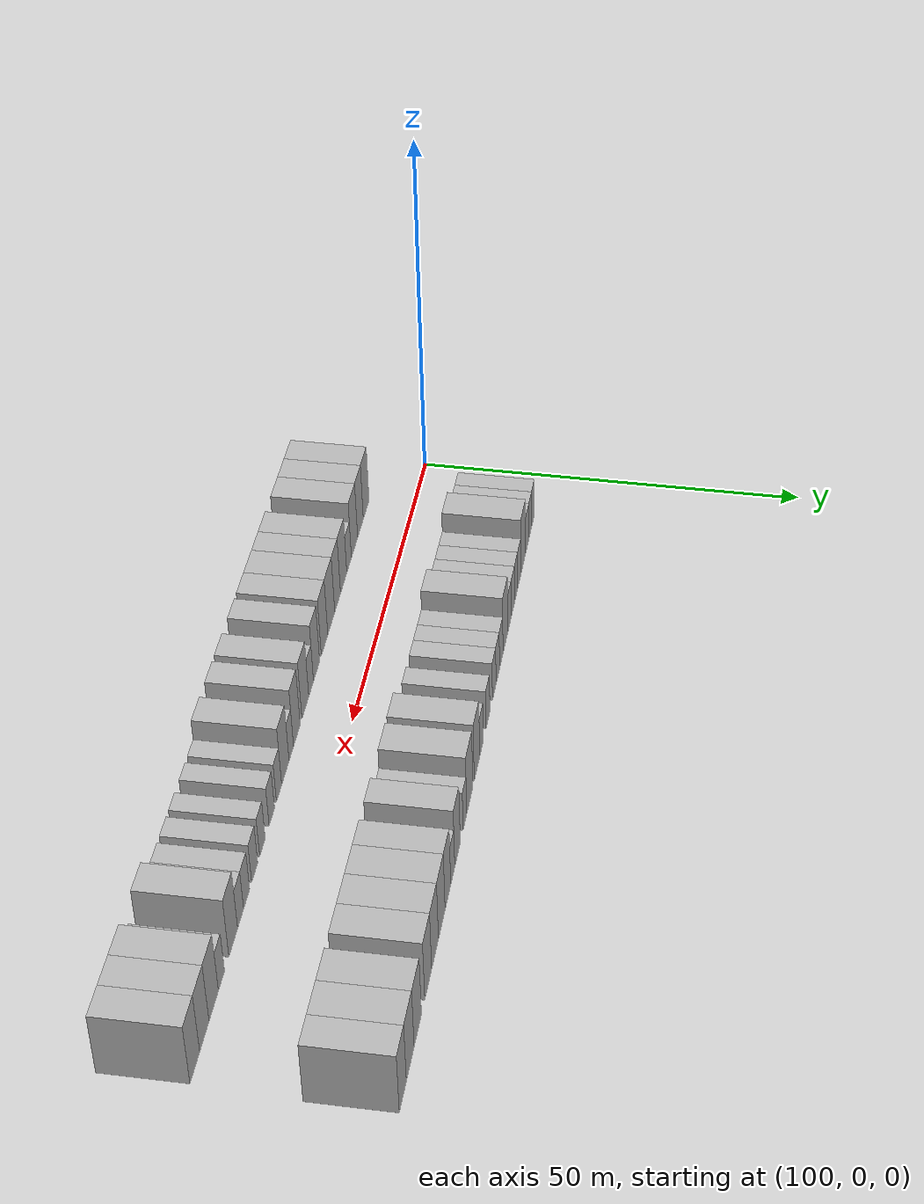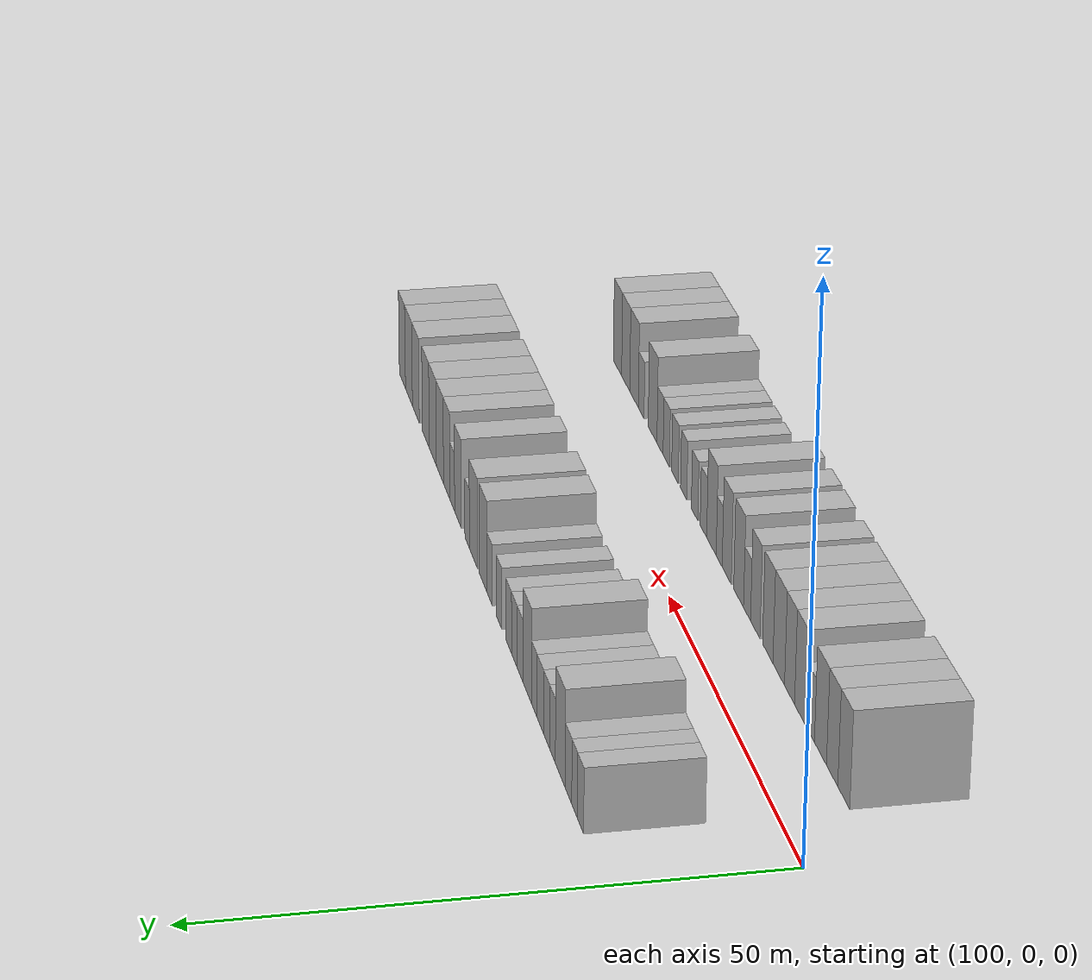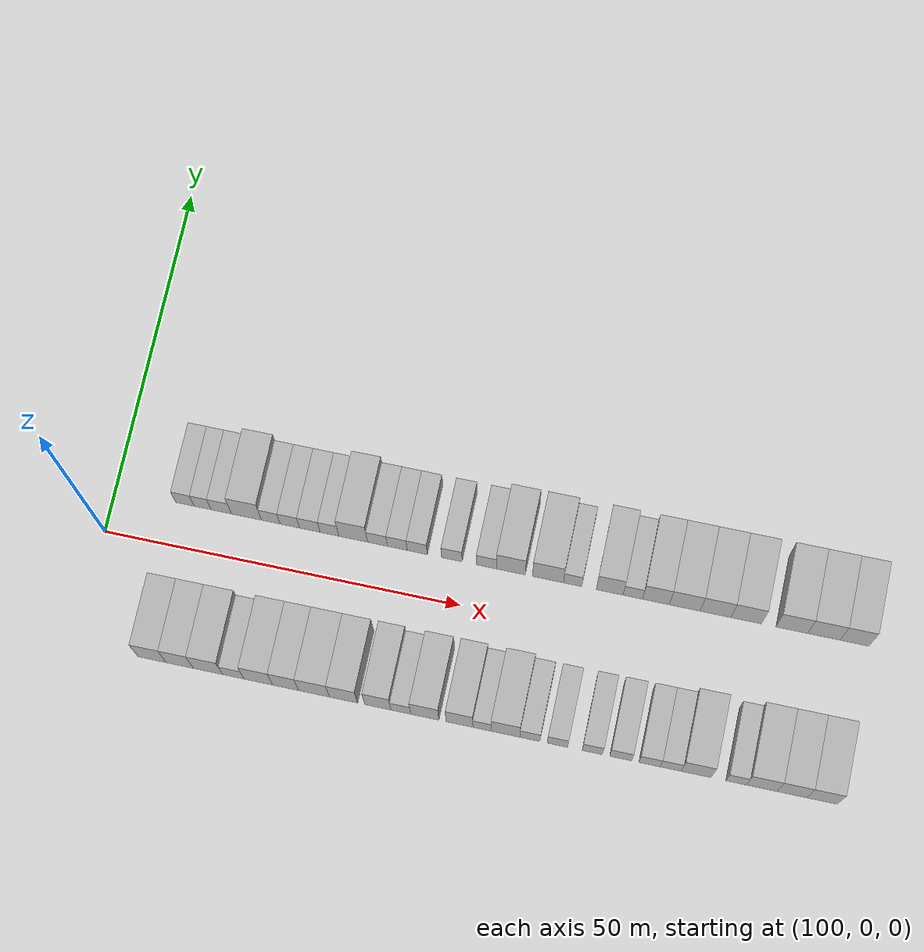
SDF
<sdf version="1.6">
 <world name="default">
  <model name="building_27">
   <static>1</static>
   <pose>109.8385 11.0000 0 0.000000 0.000000 1.570796</pose>
   <link name="link">
    <pose>0 0 3.00 0 0 0</pose>
    <collision name="collision"><geometry><box><size>10.0000 2.6257 6.0000</size></box></geometry></collision>
    <visual name="visual">
     <cast_shadows>0</cast_shadows>
     <geometry><box><size>10.0000 2.6257 6.0000</size></box></geometry>
     <material>
      <script>
       <uri>model://HANNAS_wall/materials/scripts</uri>
       <uri>model://HANNAS_wall/materials/textures</uri>
       <name>vrc/HANNAS_wall</name>
      </script>
     </material>
    </visual>
   </link>
  </model>
  <model name="building_28">
   <static>1</static>
   <pose>112.3581 11.0000 0 0.000000 0.000000 1.570796</pose>
   <link name="link">
    <pose>0 0 3.00 0 0 0</pose>
    <collision name="collision"><geometry><box><size>10.0000 2.4136 6.0000</size></box></geometry></collision>
    <visual name="visual">
     <cast_shadows>0</cast_shadows>
     <geometry><box><size>10.0000 2.4136 6.0000</size></box></geometry>
     <material>
      <script>
       <uri>model://HANNAS_wall/materials/scripts</uri>
       <uri>model://HANNAS_wall/materials/textures</uri>
       <name>vrc/HANNAS_wall</name>
      </script>
     </material>
    </visual>
   </link>
  </model>
  <model name="building_29">
   <static>1</static>
   <pose>115.0094 11.0000 0 0.000000 0.000000 1.570796</pose>
   <link name="link">
    <pose>0 0 3.00 0 0 0</pose>
    <collision name="collision"><geometry><box><size>10.0000 2.8890 6.0000</size></box></geometry></collision>
    <visual name="visual">
     <cast_shadows>0</cast_shadows>
     <geometry><box><size>10.0000 2.8890 6.0000</size></box></geometry>
     <material>
      <script>
       <uri>model://HANNAS_wall/materials/scripts</uri>
       <uri>model://HANNAS_wall/materials/textures</uri>
       <name>vrc/HANNAS_wall</name>
      </script>
     </material>
    </visual>
   </link>
  </model>
  <model name="building_30">
   <static>1</static>
   <pose>118.5766 11.0000 0 0.000000 0.000000 1.570796</pose>
   <link name="link">
    <pose>0 0 4.50 0 0 0</pose>
    <collision name="collision"><geometry><box><size>10.0000 4.2454 9.0000</size></box></geometry></collision>
    <visual name="visual">
     <cast_shadows>0</cast_shadows>
     <geometry><box><size>10.0000 4.2454 9.0000</size></box></geometry>
     <material>
      <script>
       <uri>model://HANNAS_wall/materials/scripts</uri>
       <uri>model://HANNAS_wall/materials/textures</uri>
       <name>vrc/HANNAS_wall</name>
      </script>
     </material>
    </visual>
   </link>
  </model>
  <model name="building_31">
   <static>1</static>
   <pose>122.0176 11.0000 0 0.000000 0.000000 1.570796</pose>
   <link name="link">
    <pose>0 0 3.00 0 0 0</pose>
    <collision name="collision"><geometry><box><size>10.0000 2.6364 6.0000</size></box></geometry></collision>
    <visual name="visual">
     <cast_shadows>0</cast_shadows>
     <geometry><box><size>10.0000 2.6364 6.0000</size></box></geometry>
     <material>
      <script>
       <uri>model://HANNAS_wall/materials/scripts</uri>
       <uri>model://HANNAS_wall/materials/textures</uri>
       <name>vrc/HANNAS_wall</name>
      </script>
     </material>
    </visual>
   </link>
  </model>
  <model name="building_32">
   <static>1</static>
   <pose>124.7056 11.0000 0 0.000000 0.000000 1.570796</pose>
   <link name="link">
    <pose>0 0 3.00 0 0 0</pose>
    <collision name="collision"><geometry><box><size>10.0000 2.7395 6.0000</size></box></geometry></collision>
    <visual name="visual">
     <cast_shadows>0</cast_shadows>
     <geometry><box><size>10.0000 2.7395 6.0000</size></box></geometry>
     <material>
      <script>
       <uri>model://HANNAS_wall/materials/scripts</uri>
       <uri>model://HANNAS_wall/materials/textures</uri>
       <name>vrc/HANNAS_wall</name>
      </script>
     </material>
    </visual>
   </link>
  </model>
  <model name="building_33">
   <static>1</static>
   <pose>127.5214 11.0000 0 0.000000 0.000000 1.570796</pose>
   <link name="link">
    <pose>0 0 3.00 0 0 0</pose>
    <collision name="collision"><geometry><box><size>10.0000 2.8920 6.0000</size></box></geometry></collision>
    <visual name="visual">
     <cast_shadows>0</cast_shadows>
     <geometry><box><size>10.0000 2.8920 6.0000</size></box></geometry>
     <material>
      <script>
       <uri>model://HANNAS_wall/materials/scripts</uri>
       <uri>model://HANNAS_wall/materials/textures</uri>
       <name>vrc/HANNAS_wall</name>
      </script>
     </material>
    </visual>
   </link>
  </model>
  <model name="building_34">
   <static>1</static>
   <pose>130.2917 11.0000 0 0.000000 0.000000 1.570796</pose>
   <link name="link">
    <pose>0 0 3.00 0 0 0</pose>
    <collision name="collision"><geometry><box><size>10.0000 2.6486 6.0000</size></box></geometry></collision>
    <visual name="visual">
     <cast_shadows>0</cast_shadows>
     <geometry><box><size>10.0000 2.6486 6.0000</size></box></geometry>
     <material>
      <script>
       <uri>model://HANNAS_wall/materials/scripts</uri>
       <uri>model://HANNAS_wall/materials/textures</uri>
       <name>vrc/HANNAS_wall</name>
      </script>
     </material>
    </visual>
   </link>
  </model>
  <model name="building_35">
   <static>1</static>
   <pose>133.6456 11.0000 0 0.000000 0.000000 1.570796</pose>
   <link name="link">
    <pose>0 0 4.50 0 0 0</pose>
    <collision name="collision"><geometry><box><size>10.0000 4.0592 9.0000</size></box></geometry></collision>
    <visual name="visual">
     <cast_shadows>0</cast_shadows>
     <geometry><box><size>10.0000 4.0592 9.0000</size></box></geometry>
     <material>
      <script>
       <uri>model://HANNAS_wall/materials/scripts</uri>
       <uri>model://HANNAS_wall/materials/textures</uri>
       <name>vrc/HANNAS_wall</name>
      </script>
     </material>
    </visual>
   </link>
  </model>
  <model name="building_36">
   <static>1</static>
   <pose>137.0718 11.0000 0 0.000000 0.000000 1.570796</pose>
   <link name="link">
    <pose>0 0 3.00 0 0 0</pose>
    <collision name="collision"><geometry><box><size>10.0000 2.7932 6.0000</size></box></geometry></collision>
    <visual name="visual">
     <cast_shadows>0</cast_shadows>
     <geometry><box><size>10.0000 2.7932 6.0000</size></box></geometry>
     <material>
      <script>
       <uri>model://HANNAS_wall/materials/scripts</uri>
       <uri>model://HANNAS_wall/materials/textures</uri>
       <name>vrc/HANNAS_wall</name>
      </script>
     </material>
    </visual>
   </link>
  </model>
  <model name="building_37">
   <static>1</static>
   <pose>139.8655 11.0000 0 0.000000 0.000000 1.570796</pose>
   <link name="link">
    <pose>0 0 3.00 0 0 0</pose>
    <collision name="collision"><geometry><box><size>10.0000 2.7942 6.0000</size></box></geometry></collision>
    <visual name="visual">
     <cast_shadows>0</cast_shadows>
     <geometry><box><size>10.0000 2.7942 6.0000</size></box></geometry>
     <material>
      <script>
       <uri>model://HANNAS_wall/materials/scripts</uri>
       <uri>model://HANNAS_wall/materials/textures</uri>
       <name>vrc/HANNAS_wall</name>
      </script>
     </material>
    </visual>
   </link>
  </model>
  <model name="building_38">
   <static>1</static>
   <pose>142.6719 11.0000 0 0.000000 0.000000 1.570796</pose>
   <link name="link">
    <pose>0 0 3.00 0 0 0</pose>
    <collision name="collision"><geometry><box><size>10.0000 2.8186 6.0000</size></box></geometry></collision>
    <visual name="visual">
     <cast_shadows>0</cast_shadows>
     <geometry><box><size>10.0000 2.8186 6.0000</size></box></geometry>
     <material>
      <script>
       <uri>model://HANNAS_wall/materials/scripts</uri>
       <uri>model://HANNAS_wall/materials/textures</uri>
       <name>vrc/HANNAS_wall</name>
      </script>
     </material>
    </visual>
   </link>
  </model>
  <model name="building_39">
   <static>1</static>
   <pose>147.5249 11.0000 0 0.000000 0.000000 1.570796</pose>
   <link name="link">
    <pose>0 0 3.00 0 0 0</pose>
    <collision name="collision"><geometry><box><size>10.0000 2.8876 6.0000</size></box></geometry></collision>
    <visual name="visual">
     <cast_shadows>0</cast_shadows>
     <geometry><box><size>10.0000 2.8876 6.0000</size></box></geometry>
     <material>
      <script>
       <uri>model://HANNAS_wall/materials/scripts</uri>
       <uri>model://HANNAS_wall/materials/textures</uri>
       <name>vrc/HANNAS_wall</name>
      </script>
     </material>
    </visual>
   </link>
  </model>
  <model name="building_40">
   <static>1</static>
   <pose>152.3663 11.0000 0 0.000000 0.000000 1.570796</pose>
   <link name="link">
    <pose>0 0 3.00 0 0 0</pose>
    <collision name="collision"><geometry><box><size>10.0000 2.7952 6.0000</size></box></geometry></collision>
    <visual name="visual">
     <cast_shadows>0</cast_shadows>
     <geometry><box><size>10.0000 2.7952 6.0000</size></box></geometry>
     <material>
      <script>
       <uri>model://HANNAS_wall/materials/scripts</uri>
       <uri>model://HANNAS_wall/materials/textures</uri>
       <name>vrc/HANNAS_wall</name>
      </script>
     </material>
    </visual>
   </link>
  </model>
  <model name="building_41">
   <static>1</static>
   <pose>155.7898 11.0000 0 0.000000 0.000000 1.570796</pose>
   <link name="link">
    <pose>0 0 4.50 0 0 0</pose>
    <collision name="collision"><geometry><box><size>10.0000 4.0518 9.0000</size></box></geometry></collision>
    <visual name="visual">
     <cast_shadows>0</cast_shadows>
     <geometry><box><size>10.0000 4.0518 9.0000</size></box></geometry>
     <material>
      <script>
       <uri>model://HANNAS_wall/materials/scripts</uri>
       <uri>model://HANNAS_wall/materials/textures</uri>
       <name>vrc/HANNAS_wall</name>
      </script>
     </material>
    </visual>
   </link>
  </model>
  <model name="building_42">
   <static>1</static>
   <pose>160.9816 11.0000 0 0.000000 0.000000 1.570796</pose>
   <link name="link">
    <pose>0 0 4.50 0 0 0</pose>
    <collision name="collision"><geometry><box><size>10.0000 4.3320 9.0000</size></box></geometry></collision>
    <visual name="visual">
     <cast_shadows>0</cast_shadows>
     <geometry><box><size>10.0000 4.3320 9.0000</size></box></geometry>
     <material>
      <script>
       <uri>model://HANNAS_wall/materials/scripts</uri>
       <uri>model://HANNAS_wall/materials/textures</uri>
       <name>vrc/HANNAS_wall</name>
      </script>
     </material>
    </visual>
   </link>
  </model>
  <model name="building_43">
   <static>1</static>
   <pose>164.4293 11.0000 0 0.000000 0.000000 1.570796</pose>
   <link name="link">
    <pose>0 0 3.00 0 0 0</pose>
    <collision name="collision"><geometry><box><size>10.0000 2.5633 6.0000</size></box></geometry></collision>
    <visual name="visual">
     <cast_shadows>0</cast_shadows>
     <geometry><box><size>10.0000 2.5633 6.0000</size></box></geometry>
     <material>
      <script>
       <uri>model://HANNAS_wall/materials/scripts</uri>
       <uri>model://HANNAS_wall/materials/textures</uri>
       <name>vrc/HANNAS_wall</name>
      </script>
     </material>
    </visual>
   </link>
  </model>
  <model name="building_44">
   <static>1</static>
   <pose>169.5822 11.0000 0 0.000000 0.000000 1.570796</pose>
   <link name="link">
    <pose>0 0 4.50 0 0 0</pose>
    <collision name="collision"><geometry><box><size>10.0000 3.7427 9.0000</size></box></geometry></collision>
    <visual name="visual">
     <cast_shadows>0</cast_shadows>
     <geometry><box><size>10.0000 3.7427 9.0000</size></box></geometry>
     <material>
      <script>
       <uri>model://HANNAS_wall/materials/scripts</uri>
       <uri>model://HANNAS_wall/materials/textures</uri>
       <name>vrc/HANNAS_wall</name>
      </script>
     </material>
    </visual>
   </link>
  </model>
  <model name="building_45">
   <static>1</static>
   <pose>172.8042 11.0000 0 0.000000 0.000000 1.570796</pose>
   <link name="link">
    <pose>0 0 3.00 0 0 0</pose>
    <collision name="collision"><geometry><box><size>10.0000 2.7013 6.0000</size></box></geometry></collision>
    <visual name="visual">
     <cast_shadows>0</cast_shadows>
     <geometry><box><size>10.0000 2.7013 6.0000</size></box></geometry>
     <material>
      <script>
       <uri>model://HANNAS_wall/materials/scripts</uri>
       <uri>model://HANNAS_wall/materials/textures</uri>
       <name>vrc/HANNAS_wall</name>
      </script>
     </material>
    </visual>
   </link>
  </model>
  <model name="building_46">
   <static>1</static>
   <pose>176.0213 11.0000 0 0.000000 0.000000 1.570796</pose>
   <link name="link">
    <pose>0 0 4.50 0 0 0</pose>
    <collision name="collision"><geometry><box><size>10.0000 3.7328 9.0000</size></box></geometry></collision>
    <visual name="visual">
     <cast_shadows>0</cast_shadows>
     <geometry><box><size>10.0000 3.7328 9.0000</size></box></geometry>
     <material>
      <script>
       <uri>model://HANNAS_wall/materials/scripts</uri>
       <uri>model://HANNAS_wall/materials/textures</uri>
       <name>vrc/HANNAS_wall</name>
      </script>
     </material>
    </visual>
   </link>
  </model>
  <model name="building_47">
   <static>1</static>
   <pose>180.0327 11.0000 0 0.000000 0.000000 1.570796</pose>
   <link name="link">
    <pose>0 0 4.50 0 0 0</pose>
    <collision name="collision"><geometry><box><size>10.0000 4.2900 9.0000</size></box></geometry></collision>
    <visual name="visual">
     <cast_shadows>0</cast_shadows>
     <geometry><box><size>10.0000 4.2900 9.0000</size></box></geometry>
     <material>
      <script>
       <uri>model://HANNAS_wall/materials/scripts</uri>
       <uri>model://HANNAS_wall/materials/textures</uri>
       <name>vrc/HANNAS_wall</name>
      </script>
     </material>
    </visual>
   </link>
  </model>
  <model name="building_48">
   <static>1</static>
   <pose>184.3158 11.0000 0 0.000000 0.000000 1.570796</pose>
   <link name="link">
    <pose>0 0 4.50 0 0 0</pose>
    <collision name="collision"><geometry><box><size>10.0000 4.2763 9.0000</size></box></geometry></collision>
    <visual name="visual">
     <cast_shadows>0</cast_shadows>
     <geometry><box><size>10.0000 4.2763 9.0000</size></box></geometry>
     <material>
      <script>
       <uri>model://HANNAS_wall/materials/scripts</uri>
       <uri>model://HANNAS_wall/materials/textures</uri>
       <name>vrc/HANNAS_wall</name>
      </script>
     </material>
    </visual>
   </link>
  </model>
  <model name="building_49">
   <static>1</static>
   <pose>188.5750 11.0000 0 0.000000 0.000000 1.570796</pose>
   <link name="link">
    <pose>0 0 4.50 0 0 0</pose>
    <collision name="collision"><geometry><box><size>10.0000 4.2422 9.0000</size></box></geometry></collision>
    <visual name="visual">
     <cast_shadows>0</cast_shadows>
     <geometry><box><size>10.0000 4.2422 9.0000</size></box></geometry>
     <material>
      <script>
       <uri>model://HANNAS_wall/materials/scripts</uri>
       <uri>model://HANNAS_wall/materials/textures</uri>
       <name>vrc/HANNAS_wall</name>
      </script>
     </material>
    </visual>
   </link>
  </model>
  <model name="building_50">
   <static>1</static>
   <pose>194.8791 11.0000 0 0.000000 0.000000 1.570796</pose>
   <link name="link">
    <pose>0 0 4.50 0 0 0</pose>
    <collision name="collision"><geometry><box><size>10.0000 4.3661 9.0000</size></box></geometry></collision>
    <visual name="visual">
     <cast_shadows>0</cast_shadows>
     <geometry><box><size>10.0000 4.3661 9.0000</size></box></geometry>
     <material>
      <script>
       <uri>model://HANNAS_wall/materials/scripts</uri>
       <uri>model://HANNAS_wall/materials/textures</uri>
       <name>vrc/HANNAS_wall</name>
      </script>
     </material>
    </visual>
   </link>
  </model>
  <model name="building_51">
   <static>1</static>
   <pose>199.3101 11.0000 0 0.000000 0.000000 1.570796</pose>
   <link name="link">
    <pose>0 0 4.50 0 0 0</pose>
    <collision name="collision"><geometry><box><size>10.0000 4.4959 9.0000</size></box></geometry></collision>
    <visual name="visual">
     <cast_shadows>0</cast_shadows>
     <geometry><box><size>10.0000 4.4959 9.0000</size></box></geometry>
     <material>
      <script>
       <uri>model://HANNAS_wall/materials/scripts</uri>
       <uri>model://HANNAS_wall/materials/textures</uri>
       <name>vrc/HANNAS_wall</name>
      </script>
     </material>
    </visual>
   </link>
  </model>
  <model name="building_52">
   <static>1</static>
   <pose>203.5616 11.0000 0 0.000000 0.000000 1.570796</pose>
   <link name="link">
    <pose>0 0 4.50 0 0 0</pose>
    <collision name="collision"><geometry><box><size>10.0000 4.0071 9.0000</size></box></geometry></collision>
    <visual name="visual">
     <cast_shadows>0</cast_shadows>
     <geometry><box><size>10.0000 4.0071 9.0000</size></box></geometry>
     <material>
      <script>
       <uri>model://HANNAS_wall/materials/scripts</uri>
       <uri>model://HANNAS_wall/materials/textures</uri>
       <name>vrc/HANNAS_wall</name>
      </script>
     </material>
    </visual>
   </link>
  </model>
  <model name="building_78">
   <static>1</static>
   <pose>110.6580 -11.0000 0 0.000000 0.000000 1.570796</pose>
   <link name="link">
    <pose>0 0 4.50 0 0 0</pose>
    <collision name="collision"><geometry><box><size>10.0000 3.9296 9.0000</size></box></geometry></collision>
    <visual name="visual">
     <cast_shadows>0</cast_shadows>
     <geometry><box><size>10.0000 3.9296 9.0000</size></box></geometry>
     <material>
      <script>
       <uri>model://HANNAS_wall/materials/scripts</uri>
       <uri>model://HANNAS_wall/materials/textures</uri>
       <name>vrc/HANNAS_wall</name>
      </script>
     </material>
    </visual>
   </link>
  </model>
  <model name="building_79">
   <static>1</static>
   <pose>114.5160 -11.0000 0 0.000000 0.000000 1.570796</pose>
   <link name="link">
    <pose>0 0 4.50 0 0 0</pose>
    <collision name="collision"><geometry><box><size>10.0000 3.7866 9.0000</size></box></geometry></collision>
    <visual name="visual">
     <cast_shadows>0</cast_shadows>
     <geometry><box><size>10.0000 3.7866 9.0000</size></box></geometry>
     <material>
      <script>
       <uri>model://HANNAS_wall/materials/scripts</uri>
       <uri>model://HANNAS_wall/materials/textures</uri>
       <name>vrc/HANNAS_wall</name>
      </script>
     </material>
    </visual>
   </link>
  </model>
  <model name="building_80">
   <static>1</static>
   <pose>118.4594 -11.0000 0 0.000000 0.000000 1.570796</pose>
   <link name="link">
    <pose>0 0 4.50 0 0 0</pose>
    <collision name="collision"><geometry><box><size>10.0000 4.1000 9.0000</size></box></geometry></collision>
    <visual name="visual">
     <cast_shadows>0</cast_shadows>
     <geometry><box><size>10.0000 4.1000 9.0000</size></box></geometry>
     <material>
      <script>
       <uri>model://HANNAS_wall/materials/scripts</uri>
       <uri>model://HANNAS_wall/materials/textures</uri>
       <name>vrc/HANNAS_wall</name>
      </script>
     </material>
    </visual>
   </link>
  </model>
  <model name="building_81">
   <static>1</static>
   <pose>122.0070 -11.0000 0 0.000000 0.000000 1.570796</pose>
   <link name="link">
    <pose>0 0 3.00 0 0 0</pose>
    <collision name="collision"><geometry><box><size>10.0000 2.9952 6.0000</size></box></geometry></collision>
    <visual name="visual">
     <cast_shadows>0</cast_shadows>
     <geometry><box><size>10.0000 2.9952 6.0000</size></box></geometry>
     <material>
      <script>
       <uri>model://HANNAS_wall/materials/scripts</uri>
       <uri>model://HANNAS_wall/materials/textures</uri>
       <name>vrc/HANNAS_wall</name>
      </script>
     </material>
    </visual>
   </link>
  </model>
  <model name="building_82">
   <static>1</static>
   <pose>125.4945 -11.0000 0 0.000000 0.000000 1.570796</pose>
   <link name="link">
    <pose>0 0 4.50 0 0 0</pose>
    <collision name="collision"><geometry><box><size>10.0000 3.9800 9.0000</size></box></geometry></collision>
    <visual name="visual">
     <cast_shadows>0</cast_shadows>
     <geometry><box><size>10.0000 3.9800 9.0000</size></box></geometry>
     <material>
      <script>
       <uri>model://HANNAS_wall/materials/scripts</uri>
       <uri>model://HANNAS_wall/materials/textures</uri>
       <name>vrc/HANNAS_wall</name>
      </script>
     </material>
    </visual>
   </link>
  </model>
  <model name="building_83">
   <static>1</static>
   <pose>129.2895 -11.0000 0 0.000000 0.000000 1.570796</pose>
   <link name="link">
    <pose>0 0 4.50 0 0 0</pose>
    <collision name="collision"><geometry><box><size>10.0000 3.6100 9.0000</size></box></geometry></collision>
    <visual name="visual">
     <cast_shadows>0</cast_shadows>
     <geometry><box><size>10.0000 3.6100 9.0000</size></box></geometry>
     <material>
      <script>
       <uri>model://HANNAS_wall/materials/scripts</uri>
       <uri>model://HANNAS_wall/materials/textures</uri>
       <name>vrc/HANNAS_wall</name>
      </script>
     </material>
    </visual>
   </link>
  </model>
  <model name="building_84">
   <static>1</static>
   <pose>133.2299 -11.0000 0 0.000000 0.000000 1.570796</pose>
   <link name="link">
    <pose>0 0 4.50 0 0 0</pose>
    <collision name="collision"><geometry><box><size>10.0000 4.2707 9.0000</size></box></geometry></collision>
    <visual name="visual">
     <cast_shadows>0</cast_shadows>
     <geometry><box><size>10.0000 4.2707 9.0000</size></box></geometry>
     <material>
      <script>
       <uri>model://HANNAS_wall/materials/scripts</uri>
       <uri>model://HANNAS_wall/materials/textures</uri>
       <name>vrc/HANNAS_wall</name>
      </script>
     </material>
    </visual>
   </link>
  </model>
  <model name="building_85">
   <static>1</static>
   <pose>137.3179 -11.0000 0 0.000000 0.000000 1.570796</pose>
   <link name="link">
    <pose>0 0 4.50 0 0 0</pose>
    <collision name="collision"><geometry><box><size>10.0000 3.9054 9.0000</size></box></geometry></collision>
    <visual name="visual">
     <cast_shadows>0</cast_shadows>
     <geometry><box><size>10.0000 3.9054 9.0000</size></box></geometry>
     <material>
      <script>
       <uri>model://HANNAS_wall/materials/scripts</uri>
       <uri>model://HANNAS_wall/materials/textures</uri>
       <name>vrc/HANNAS_wall</name>
      </script>
     </material>
    </visual>
   </link>
  </model>
  <model name="building_86">
   <static>1</static>
   <pose>142.0765 -11.0000 0 0.000000 0.000000 1.570796</pose>
   <link name="link">
    <pose>0 0 4.50 0 0 0</pose>
    <collision name="collision"><geometry><box><size>10.0000 3.6116 9.0000</size></box></geometry></collision>
    <visual name="visual">
     <cast_shadows>0</cast_shadows>
     <geometry><box><size>10.0000 3.6116 9.0000</size></box></geometry>
     <material>
      <script>
       <uri>model://HANNAS_wall/materials/scripts</uri>
       <uri>model://HANNAS_wall/materials/textures</uri>
       <name>vrc/HANNAS_wall</name>
      </script>
     </material>
    </visual>
   </link>
  </model>
  <model name="building_87">
   <static>1</static>
   <pose>145.2523 -11.0000 0 0.000000 0.000000 1.570796</pose>
   <link name="link">
    <pose>0 0 3.00 0 0 0</pose>
    <collision name="collision"><geometry><box><size>10.0000 2.7400 6.0000</size></box></geometry></collision>
    <visual name="visual">
     <cast_shadows>0</cast_shadows>
     <geometry><box><size>10.0000 2.7400 6.0000</size></box></geometry>
     <material>
      <script>
       <uri>model://HANNAS_wall/materials/scripts</uri>
       <uri>model://HANNAS_wall/materials/textures</uri>
       <name>vrc/HANNAS_wall</name>
      </script>
     </material>
    </visual>
   </link>
  </model>
  <model name="building_88">
   <static>1</static>
   <pose>148.5642 -11.0000 0 0.000000 0.000000 1.570796</pose>
   <link name="link">
    <pose>0 0 4.50 0 0 0</pose>
    <collision name="collision"><geometry><box><size>10.0000 3.8838 9.0000</size></box></geometry></collision>
    <visual name="visual">
     <cast_shadows>0</cast_shadows>
     <geometry><box><size>10.0000 3.8838 9.0000</size></box></geometry>
     <material>
      <script>
       <uri>model://HANNAS_wall/materials/scripts</uri>
       <uri>model://HANNAS_wall/materials/textures</uri>
       <name>vrc/HANNAS_wall</name>
      </script>
     </material>
    </visual>
   </link>
  </model>
  <model name="building_89">
   <static>1</static>
   <pose>153.3470 -11.0000 0 0.000000 0.000000 1.570796</pose>
   <link name="link">
    <pose>0 0 4.50 0 0 0</pose>
    <collision name="collision"><geometry><box><size>10.0000 3.6818 9.0000</size></box></geometry></collision>
    <visual name="visual">
     <cast_shadows>0</cast_shadows>
     <geometry><box><size>10.0000 3.6818 9.0000</size></box></geometry>
     <material>
      <script>
       <uri>model://HANNAS_wall/materials/scripts</uri>
       <uri>model://HANNAS_wall/materials/textures</uri>
       <name>vrc/HANNAS_wall</name>
      </script>
     </material>
    </visual>
   </link>
  </model>
  <model name="building_90">
   <static>1</static>
   <pose>156.4240 -11.0000 0 0.000000 0.000000 1.570796</pose>
   <link name="link">
    <pose>0 0 3.00 0 0 0</pose>
    <collision name="collision"><geometry><box><size>10.0000 2.4723 6.0000</size></box></geometry></collision>
    <visual name="visual">
     <cast_shadows>0</cast_shadows>
     <geometry><box><size>10.0000 2.4723 6.0000</size></box></geometry>
     <material>
      <script>
       <uri>model://HANNAS_wall/materials/scripts</uri>
       <uri>model://HANNAS_wall/materials/textures</uri>
       <name>vrc/HANNAS_wall</name>
      </script>
     </material>
    </visual>
   </link>
  </model>
  <model name="building_91">
   <static>1</static>
   <pose>159.6442 -11.0000 0 0.000000 0.000000 1.570796</pose>
   <link name="link">
    <pose>0 0 4.50 0 0 0</pose>
    <collision name="collision"><geometry><box><size>10.0000 3.9680 9.0000</size></box></geometry></collision>
    <visual name="visual">
     <cast_shadows>0</cast_shadows>
     <geometry><box><size>10.0000 3.9680 9.0000</size></box></geometry>
     <material>
      <script>
       <uri>model://HANNAS_wall/materials/scripts</uri>
       <uri>model://HANNAS_wall/materials/textures</uri>
       <name>vrc/HANNAS_wall</name>
      </script>
     </material>
    </visual>
   </link>
  </model>
  <model name="building_92">
   <static>1</static>
   <pose>163.0148 -11.0000 0 0.000000 0.000000 1.570796</pose>
   <link name="link">
    <pose>0 0 3.00 0 0 0</pose>
    <collision name="collision"><geometry><box><size>10.0000 2.7731 6.0000</size></box></geometry></collision>
    <visual name="visual">
     <cast_shadows>0</cast_shadows>
     <geometry><box><size>10.0000 2.7731 6.0000</size></box></geometry>
     <material>
      <script>
       <uri>model://HANNAS_wall/materials/scripts</uri>
       <uri>model://HANNAS_wall/materials/textures</uri>
       <name>vrc/HANNAS_wall</name>
      </script>
     </material>
    </visual>
   </link>
  </model>
  <model name="building_93">
   <static>1</static>
   <pose>166.8021 -11.0000 0 0.000000 0.000000 1.570796</pose>
   <link name="link">
    <pose>0 0 3.00 0 0 0</pose>
    <collision name="collision"><geometry><box><size>10.0000 2.8016 6.0000</size></box></geometry></collision>
    <visual name="visual">
     <cast_shadows>0</cast_shadows>
     <geometry><box><size>10.0000 2.8016 6.0000</size></box></geometry>
     <material>
      <script>
       <uri>model://HANNAS_wall/materials/scripts</uri>
       <uri>model://HANNAS_wall/materials/textures</uri>
       <name>vrc/HANNAS_wall</name>
      </script>
     </material>
    </visual>
   </link>
  </model>
  <model name="building_94">
   <static>1</static>
   <pose>171.5910 -11.0000 0 0.000000 0.000000 1.570796</pose>
   <link name="link">
    <pose>0 0 3.00 0 0 0</pose>
    <collision name="collision"><geometry><box><size>10.0000 2.7762 6.0000</size></box></geometry></collision>
    <visual name="visual">
     <cast_shadows>0</cast_shadows>
     <geometry><box><size>10.0000 2.7762 6.0000</size></box></geometry>
     <material>
      <script>
       <uri>model://HANNAS_wall/materials/scripts</uri>
       <uri>model://HANNAS_wall/materials/textures</uri>
       <name>vrc/HANNAS_wall</name>
      </script>
     </material>
    </visual>
   </link>
  </model>
  <model name="building_95">
   <static>1</static>
   <pose>175.4771 -11.0000 0 0.000000 0.000000 1.570796</pose>
   <link name="link">
    <pose>0 0 3.00 0 0 0</pose>
    <collision name="collision"><geometry><box><size>10.0000 2.9959 6.0000</size></box></geometry></collision>
    <visual name="visual">
     <cast_shadows>0</cast_shadows>
     <geometry><box><size>10.0000 2.9959 6.0000</size></box></geometry>
     <material>
      <script>
       <uri>model://HANNAS_wall/materials/scripts</uri>
       <uri>model://HANNAS_wall/materials/textures</uri>
       <name>vrc/HANNAS_wall</name>
      </script>
     </material>
    </visual>
   </link>
  </model>
  <model name="building_96">
   <static>1</static>
   <pose>179.4300 -11.0000 0 0.000000 0.000000 1.570796</pose>
   <link name="link">
    <pose>0 0 3.00 0 0 0</pose>
    <collision name="collision"><geometry><box><size>10.0000 2.9100 6.0000</size></box></geometry></collision>
    <visual name="visual">
     <cast_shadows>0</cast_shadows>
     <geometry><box><size>10.0000 2.9100 6.0000</size></box></geometry>
     <material>
      <script>
       <uri>model://HANNAS_wall/materials/scripts</uri>
       <uri>model://HANNAS_wall/materials/textures</uri>
       <name>vrc/HANNAS_wall</name>
      </script>
     </material>
    </visual>
   </link>
  </model>
  <model name="building_97">
   <static>1</static>
   <pose>182.3120 -11.0000 0 0.000000 0.000000 1.570796</pose>
   <link name="link">
    <pose>0 0 3.00 0 0 0</pose>
    <collision name="collision"><geometry><box><size>10.0000 2.8539 6.0000</size></box></geometry></collision>
    <visual name="visual">
     <cast_shadows>0</cast_shadows>
     <geometry><box><size>10.0000 2.8539 6.0000</size></box></geometry>
     <material>
      <script>
       <uri>model://HANNAS_wall/materials/scripts</uri>
       <uri>model://HANNAS_wall/materials/textures</uri>
       <name>vrc/HANNAS_wall</name>
      </script>
     </material>
    </visual>
   </link>
  </model>
  <model name="building_98">
   <static>1</static>
   <pose>185.7975 -11.0000 0 0.000000 0.000000 1.570796</pose>
   <link name="link">
    <pose>0 0 4.50 0 0 0</pose>
    <collision name="collision"><geometry><box><size>10.0000 4.1171 9.0000</size></box></geometry></collision>
    <visual name="visual">
     <cast_shadows>0</cast_shadows>
     <geometry><box><size>10.0000 4.1171 9.0000</size></box></geometry>
     <material>
      <script>
       <uri>model://HANNAS_wall/materials/scripts</uri>
       <uri>model://HANNAS_wall/materials/textures</uri>
       <name>vrc/HANNAS_wall</name>
      </script>
     </material>
    </visual>
   </link>
  </model>
  <model name="building_99">
   <static>1</static>
   <pose>191.2377 -11.0000 0 0.000000 0.000000 1.570796</pose>
   <link name="link">
    <pose>0 0 3.00 0 0 0</pose>
    <collision name="collision"><geometry><box><size>10.0000 2.7633 6.0000</size></box></geometry></collision>
    <visual name="visual">
     <cast_shadows>0</cast_shadows>
     <geometry><box><size>10.0000 2.7633 6.0000</size></box></geometry>
     <material>
      <script>
       <uri>model://HANNAS_wall/materials/scripts</uri>
       <uri>model://HANNAS_wall/materials/textures</uri>
       <name>vrc/HANNAS_wall</name>
      </script>
     </material>
    </visual>
   </link>
  </model>
  <model name="building_100">
   <static>1</static>
   <pose>194.7089 -11.0000 0 0.000000 0.000000 1.570796</pose>
   <link name="link">
    <pose>0 0 4.50 0 0 0</pose>
    <collision name="collision"><geometry><box><size>10.0000 4.1791 9.0000</size></box></geometry></collision>
    <visual name="visual">
     <cast_shadows>0</cast_shadows>
     <geometry><box><size>10.0000 4.1791 9.0000</size></box></geometry>
     <material>
      <script>
       <uri>model://HANNAS_wall/materials/scripts</uri>
       <uri>model://HANNAS_wall/materials/textures</uri>
       <name>vrc/HANNAS_wall</name>
      </script>
     </material>
    </visual>
   </link>
  </model>
  <model name="building_101">
   <static>1</static>
   <pose>198.8323 -11.0000 0 0.000000 0.000000 1.570796</pose>
   <link name="link">
    <pose>0 0 4.50 0 0 0</pose>
    <collision name="collision"><geometry><box><size>10.0000 4.0677 9.0000</size></box></geometry></collision>
    <visual name="visual">
     <cast_shadows>0</cast_shadows>
     <geometry><box><size>10.0000 4.0677 9.0000</size></box></geometry>
     <material>
      <script>
       <uri>model://HANNAS_wall/materials/scripts</uri>
       <uri>model://HANNAS_wall/materials/textures</uri>
       <name>vrc/HANNAS_wall</name>
      </script>
     </material>
    </visual>
   </link>
  </model>
  <model name="building_102">
   <static>1</static>
   <pose>202.9460 -11.0000 0 0.000000 0.000000 1.570796</pose>
   <link name="link">
    <pose>0 0 4.50 0 0 0</pose>
    <collision name="collision"><geometry><box><size>10.0000 4.1596 9.0000</size></box></geometry></collision>
    <visual name="visual">
     <cast_shadows>0</cast_shadows>
     <geometry><box><size>10.0000 4.1596 9.0000</size></box></geometry>
     <material>
      <script>
       <uri>model://HANNAS_wall/materials/scripts</uri>
       <uri>model://HANNAS_wall/materials/textures</uri>
       <name>vrc/HANNAS_wall</name>
      </script>
     </material>
    </visual>
   </link>
  </model>
 </world>
</sdf>
